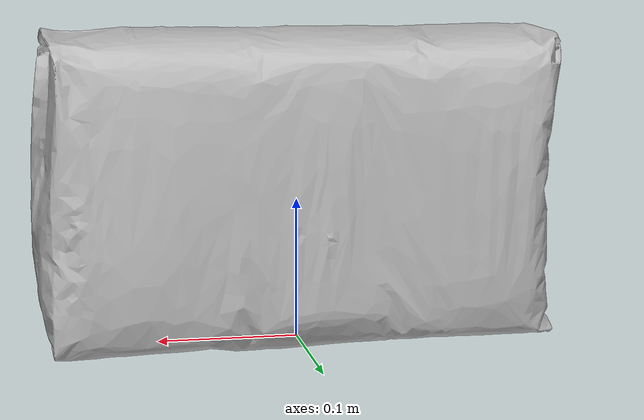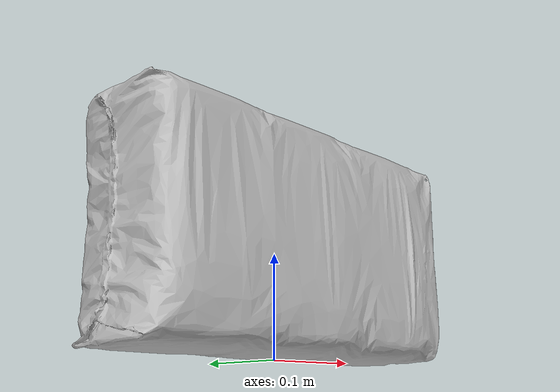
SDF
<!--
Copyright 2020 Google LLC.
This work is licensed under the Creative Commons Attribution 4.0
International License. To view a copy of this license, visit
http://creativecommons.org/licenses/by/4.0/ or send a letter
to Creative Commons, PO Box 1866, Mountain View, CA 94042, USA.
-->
<?xml version="1.0" ?>
<sdf version="1.6">
  <model name="Poise_Ultimate_Pads_Long">
    <link name="link_0">
      <visual name="visual">
        <geometry>
          <mesh>
            <uri>meshes/model.obj</uri>
          </mesh>
        </geometry>
      </visual>
      <collision name="collision_0">
        <geometry>
          <mesh>
            <uri>meshes/model.obj</uri>
          </mesh>
        </geometry>
      </collision>
    </link>
  </model>
</sdf>
